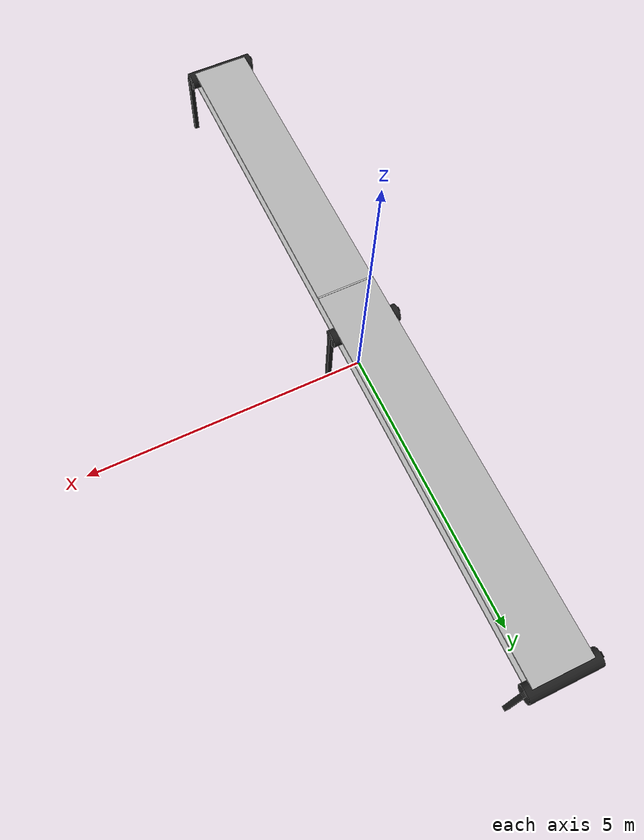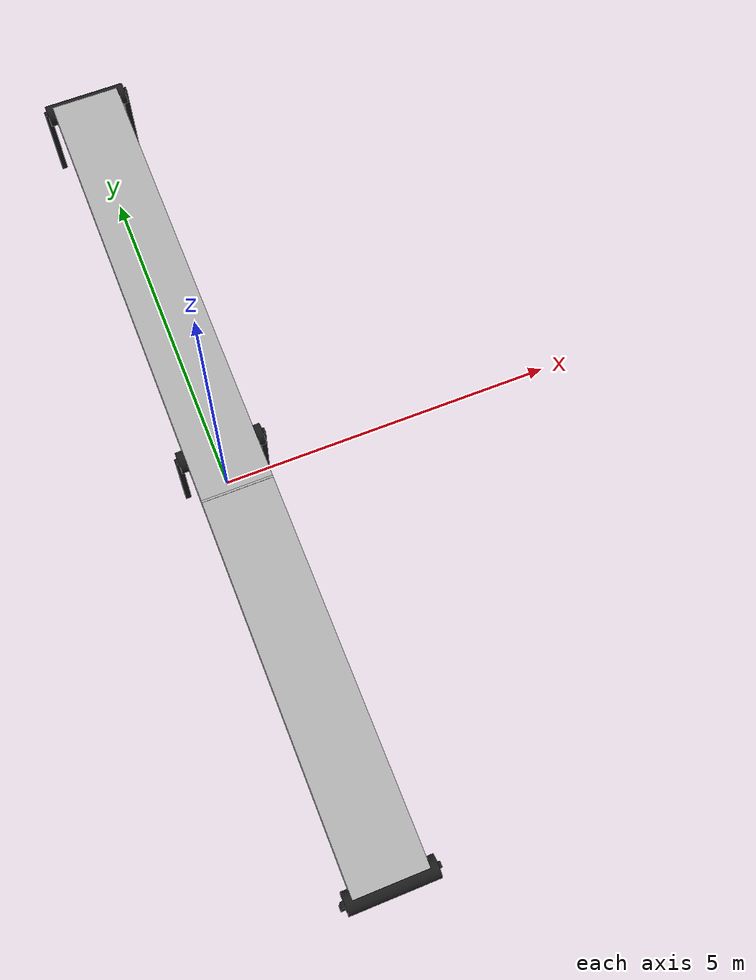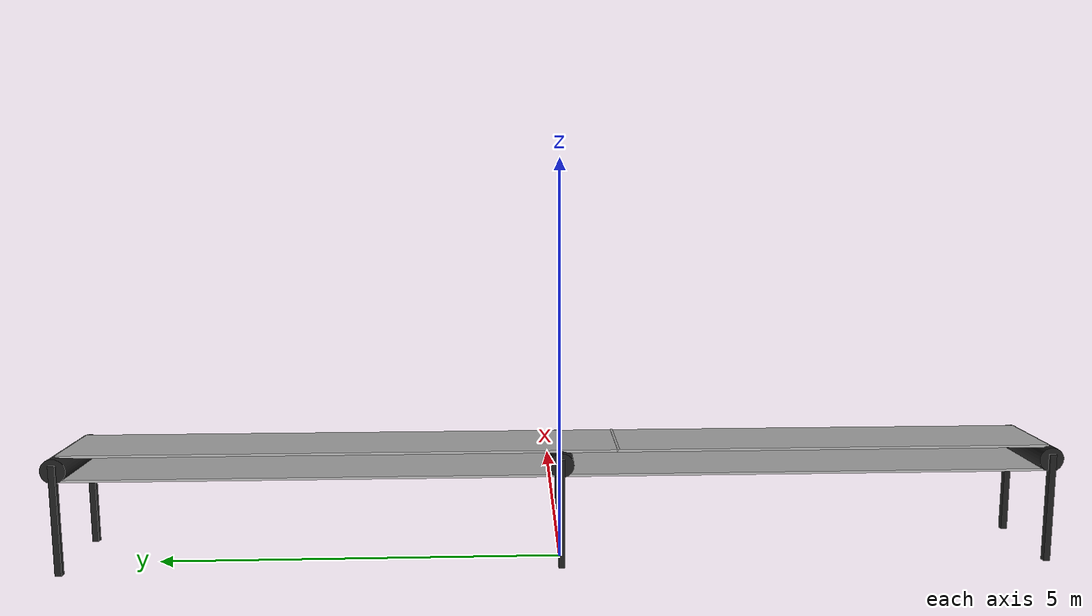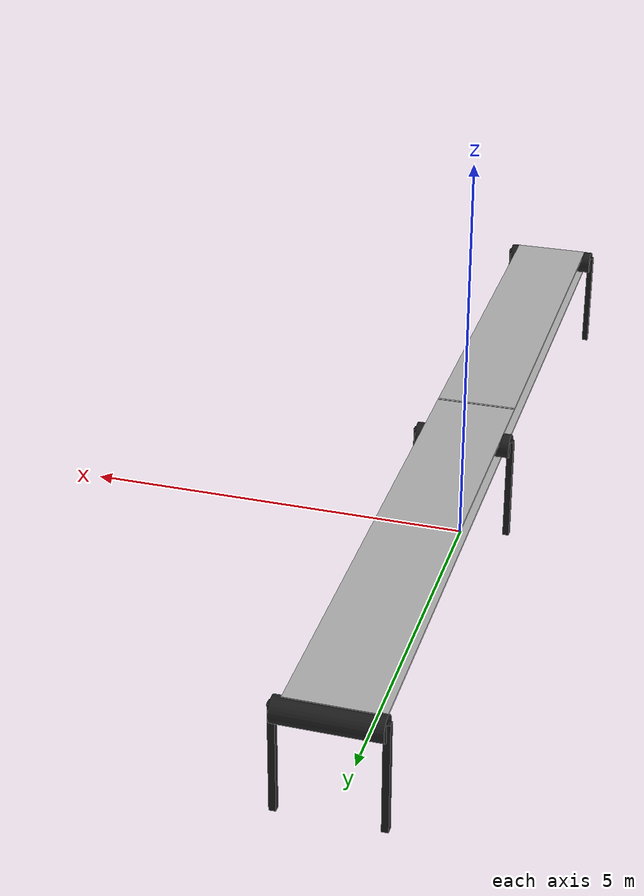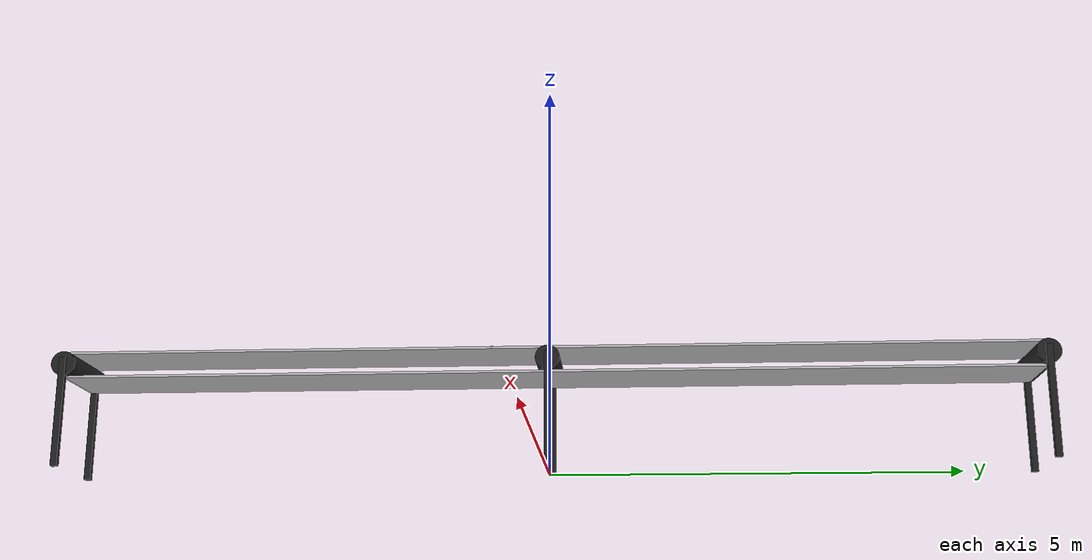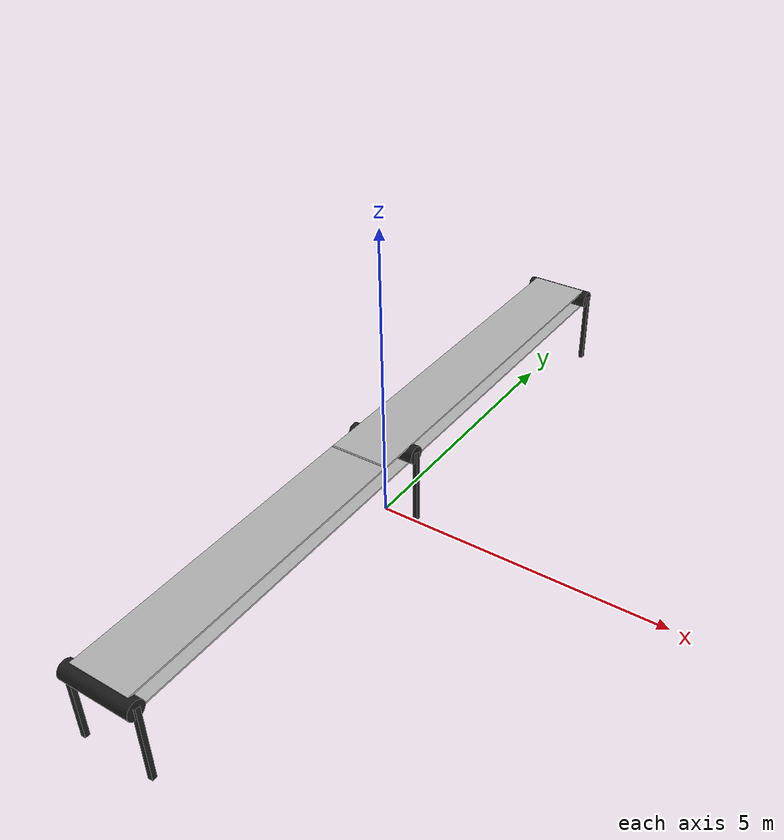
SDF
<?xml version="1.0" ?>

<sdf version="1.4">
  <model name="conveyor">
  <static>true</static>
    <link name ="world"/>
    <link name="knife">
      <pose>0 -0.690 1.505 0 0 -1.57</pose>
      <collision name="knife_collision">
        <geometry>
          <box>
            <size>0.03 1 0.03</size>
          </box>
        </geometry>
        <surface>
          <friction>
            <ode>
              <mu>1</mu>
              <mu2>1</mu2>
            </ode>
          </friction>
        </surface>
      </collision>
      <visual name="knife_visual">
        <geometry>
          <box>
            <size>0.03 1 0.03</size>
          </box>
        </geometry>
        <material>
          <script>
            <uri>/robot_ws/src/r2000_description/materials</uri>
            <uri>/robot_ws/src/r2000_description/materials/scripts</uri>
            <name>Conveyor/Belt</name>
          </script>
        </material>
      </visual>
      <sensor name='knife_contact' type='contact'>
        <contact>
          <collision>knife_collision</collision>
        </contact>
          <plugin name="knife_gazebo_ros_bumper_controller" filename="libgazebo_ros_bumper.so">
            <alwaysOn>true</alwaysOn>
            <updateRate>30</updateRate>
            <bumperTopicName>knife_bumper</bumperTopicName>
            <frameName>world</frameName>
          </plugin>
      </sensor>
    </link>
    <link name="belt1">
      <static>true</static>
      <pose>0 0 1.5 0 0 0</pose>
      <collision name="base_link_collision">
        <geometry>
          <box>
            <size>1 12 0.03</size>
          </box>
        </geometry>
      </collision>
      <visual name="base_link_visual">
        <geometry>
          <box>
            <size>1 12 0.03</size>
          </box>
        </geometry>
        <material>
          <script>
            <uri>/robot_ws/src/r2000_description/materials</uri>
            <uri>/robot_ws/src/r2000_description/materials/scripts</uri>
            <name>Conveyor/Belt</name>
          </script>
        </material>
      </visual>
    </link>
    <link name="belt2">
      <static>true</static>
      <pose>0 0 1.2 0 0 0</pose>
      <collision name="base_link_collision">
        <geometry>
          <box>
            <size>1 12 0.03</size>
          </box>
        </geometry>
      </collision>
      <visual name="base_link_visual">
        <geometry>
          <box>
            <size>1 12 0.03</size>
          </box>
        </geometry>
        <material>
          <script>
            <uri>/robot_ws/src/r2000_description/materials</uri>
            <uri>/robot_ws/src/r2000_description/materials/scripts</uri>
            <name>Conveyor/Belt</name>
          </script>
        </material>
      </visual>
    </link>
    <link name="drum1">
      <static>true</static>
      <pose>0 6 1.35 1.57079632679 0 1.57079632679</pose>
      <collision name="drum1_collision">
        <geometry>
          <cylinder>
            <radius>0.15</radius>
            <length>1.2</length>
          </cylinder>
        </geometry>
      </collision>
      <visual name="drum1_visual">
        <geometry>
          <cylinder>
            <radius>0.15</radius>
            <length>1.2</length>
          </cylinder>
        </geometry>
        <material>
          <script>
            <uri>file://media/materials/scripts/gazebo.material</uri>
            <name>Gazebo/FlatBlack</name>
          </script>
        </material>
      </visual>
    </link>
    <joint type="fixed" name="drum_joint1">
      <pose>0 6 0 0 0 0</pose>
      <parent>belt</parent>
      <child>drum1</child>
      <axis>
        <xyz>0 1 0</xyz>
      </axis>
    </joint>

    <link name="drum2">
      <static>true</static>
      <pose>0 -6 1.35 1.57079632679 0 1.57079632679</pose>
      <collision name="drum2_collision">
        <geometry>
          <cylinder>
            <radius>0.15</radius>
            <length>1.2</length>
          </cylinder>
        </geometry>
      </collision>
      <visual name="drum2_visual">
        <geometry>
          <cylinder>
            <radius>0.15</radius>
            <length>1.2</length>
          </cylinder>
        </geometry>
        <material>
          <script>
            <uri>file://media/materials/scripts/gazebo.material</uri>
            <name>Gazebo/FlatBlack</name>
          </script>
        </material>
      </visual>
    </link>
    <joint type="fixed" name="drum_joint2">
      <pose>0 -6 0 0 0 0</pose>
      <parent>belt</parent>
      <child>drum2</child>
      <axis>
        <xyz>0 1 0</xyz>
      </axis>
    </joint>

    <link name="drum3">
      <static>true</static>
      <pose>0 0 1.35 1.57079632679 0 1.57079632679</pose>
      <collision name="drum2_collision">
        <geometry>
          <cylinder>
            <radius>0.15</radius>
            <length>1.2</length>
          </cylinder>
        </geometry>
      </collision>
      <visual name="drum2_visual">
        <geometry>
          <cylinder>
            <radius>0.15</radius>
            <length>1.2</length>
          </cylinder>
        </geometry>
        <material>
          <script>
            <uri>file://media/materials/scripts/gazebo.material</uri>
            <name>Gazebo/FlatBlack</name>
          </script>
        </material>
      </visual>
    </link>

    <link name="leg1">
      <static>true</static>
      <pose>-0.6 0 0.75 0 0 0</pose>
      <collision name="leg1_collision">
        <geometry>
          <box>
            <size>0.08 0.08 1.35</size>
          </box>
        </geometry>
      </collision>
      <visual name="leg1_visual">
        <geometry>
          <box>
            <size>0.08 0.08 1.35</size>
          </box>
        </geometry>
        <material>
          <script>
            <uri>file://media/materials/scripts/gazebo.material</uri>
            <name>Gazebo/FlatBlack</name>
          </script>
        </material>
      </visual>
    </link>

    <link name="leg2">
      <static>true</static>
      <pose>0.6 0 0.75 0 0 0</pose>
      <collision name="leg2_collision">
        <geometry>
          <box>
            <size>0.08 0.08 1.35</size>
          </box>
        </geometry>
      </collision>
      <visual name="leg2_visual">
        <geometry>
          <box>
            <size>0.08 0.08 1.35</size>
          </box>
        </geometry>
        <material>
          <script>
            <uri>file://media/materials/scripts/gazebo.material</uri>
            <name>Gazebo/FlatBlack</name>
          </script>
        </material>
      </visual>
    </link>

    <link name="leg3">
      <static>true</static>
      <pose>-0.6 6 0.75 0 0 0</pose>
      <collision name="leg1_collision">
        <geometry>
          <box>
            <size>0.08 0.08 1.35</size>
          </box>
        </geometry>
      </collision>
      <visual name="leg1_visual">
        <geometry>
          <box>
            <size>0.08 0.08 1.35</size>
          </box>
        </geometry>
        <material>
          <script>
            <uri>file://media/materials/scripts/gazebo.material</uri>
            <name>Gazebo/FlatBlack</name>
          </script>
        </material>
      </visual>
    </link>

    <link name="leg4">
      <static>true</static>
      <pose>0.6 6 0.75 0 0 0</pose>
      <collision name="leg2_collision">
        <geometry>
          <box>
            <size>0.08 0.08 1.35</size>
          </box>
        </geometry>
      </collision>
      <visual name="leg2_visual">
        <geometry>
          <box>
            <size>0.08 0.08 1.35</size>
          </box>
        </geometry>
        <material>
          <script>
            <uri>file://media/materials/scripts/gazebo.material</uri>
            <name>Gazebo/FlatBlack</name>
          </script>
        </material>
      </visual>
    </link>

    <link name="leg5">
      <static>true</static>
      <pose>-0.6 -6 0.75 0 0 0</pose>
      <collision name="leg1_collision">
        <geometry>
          <box>
            <size>0.08 0.08 1.35</size>
          </box>
        </geometry>
      </collision>
      <visual name="leg1_visual">
        <geometry>
          <box>
            <size>0.08 0.08 1.35</size>
          </box>
        </geometry>
        <material>
          <script>
            <uri>file://media/materials/scripts/gazebo.material</uri>
            <name>Gazebo/FlatBlack</name>
          </script>
        </material>
      </visual>
    </link>

    <link name="leg6">
      <static>true</static>
      <pose>0.6 -6 0.75 0 0 0</pose>
      <collision name="leg2_collision">
        <geometry>
          <box>
            <size>0.08 0.08 1.35</size>
          </box>
        </geometry>
      </collision>
      <visual name="leg2_visual">
        <geometry>
          <box>
            <size>0.08 0.08 1.35</size>
          </box>
        </geometry>
        <material>
          <script>
            <uri>file://media/materials/scripts/gazebo.material</uri>
            <name>Gazebo/FlatBlack</name>
          </script>
        </material>
      </visual>
    </link>

    <link name="base_link">
      <static>true</static>
      <pose>0.4 0 0 0 -1.57 0</pose>
      <collision name="base_collision">
        <geometry>
          <polyline>
            <point>1.5 -6.0</point>
            <point>0.0 -3.0</point>
            <point>0.0 3</point>
            <point>1.5 6.0</point>
            <point>1.5 -6.0</point>
            <height>0.8</height>
          </polyline>
        </geometry>
        <surface>
          <friction>
            <ode>
              <mu>1.0</mu>
              <mu2>1.0</mu2>
            </ode>
          </friction>
        </surface>
      </collision>
    </link>
    <joint type="fixed" name="base_conveyor_joint">
      <pose>0 0 1.5 0 0 0</pose>
      <parent>base_link</parent>
      <child>belt</child>
      <axis>
        <xyz>0 0 0</xyz>
      </axis>
    </joint>
  </model>
</sdf>
